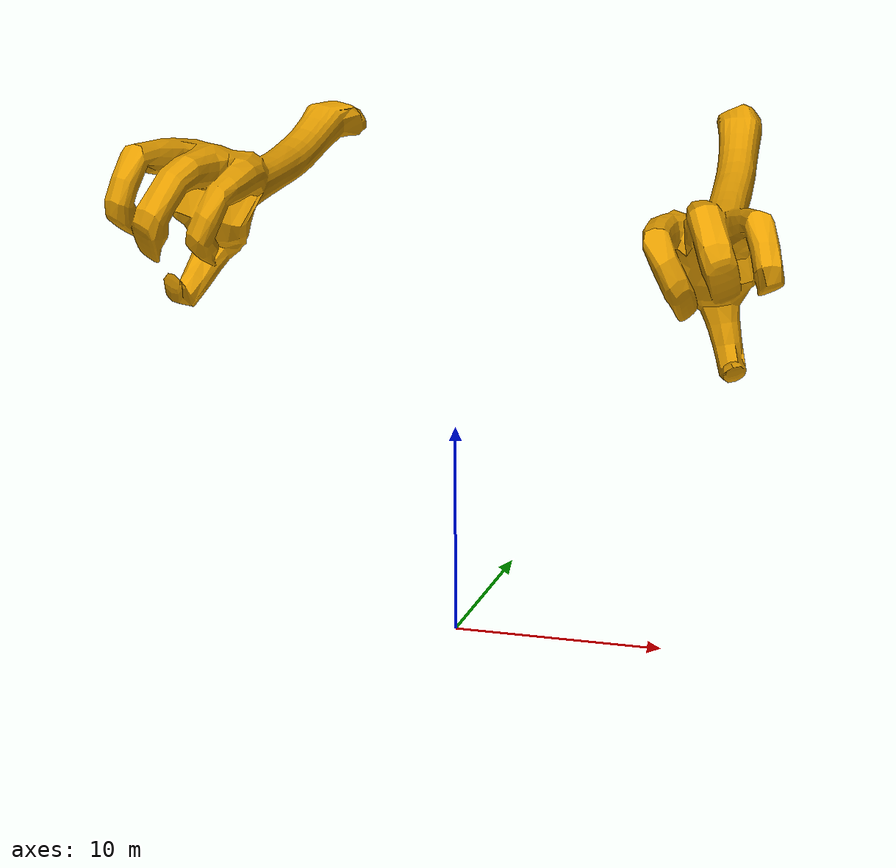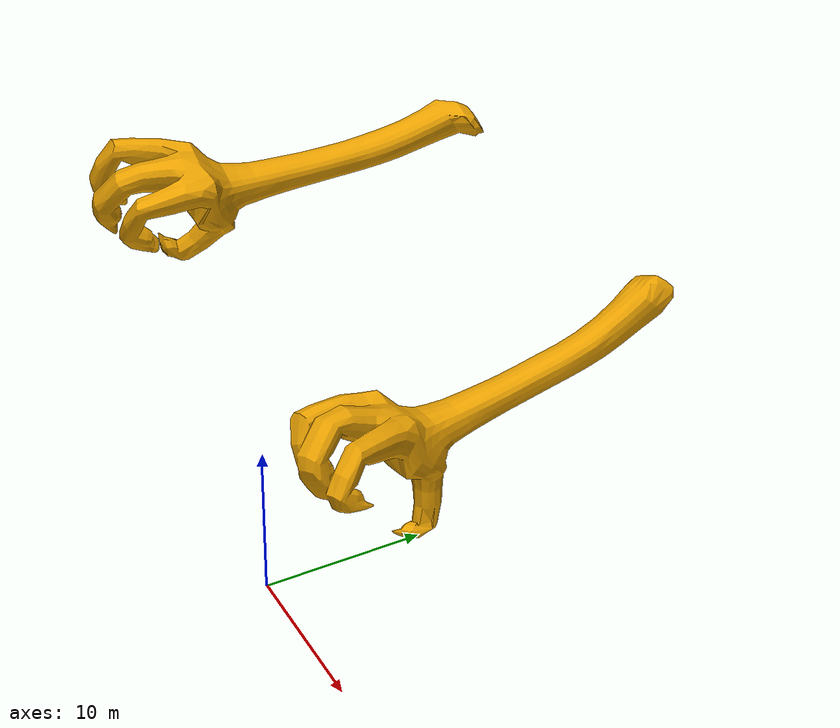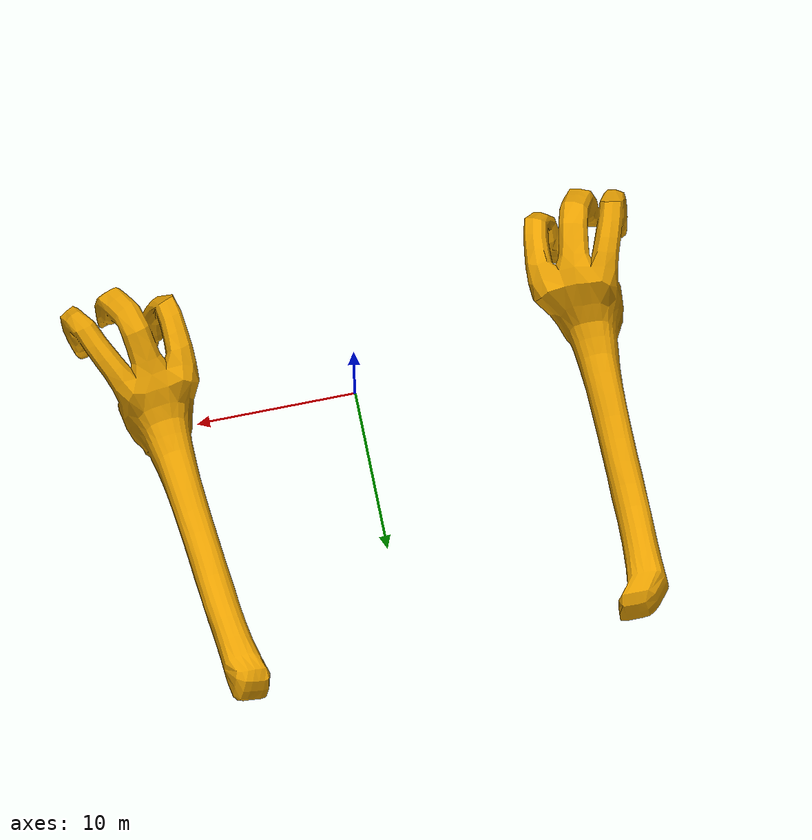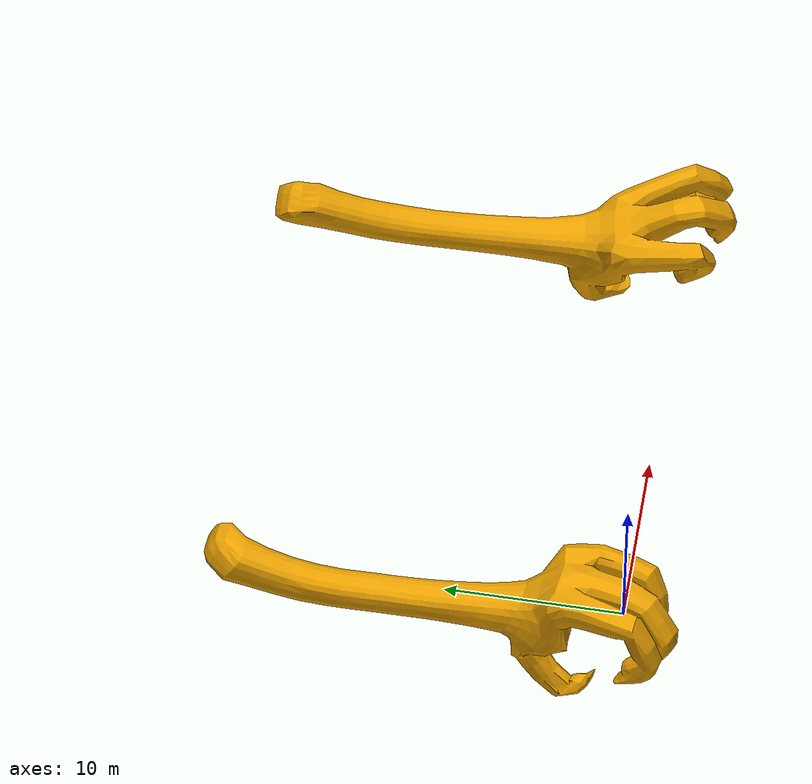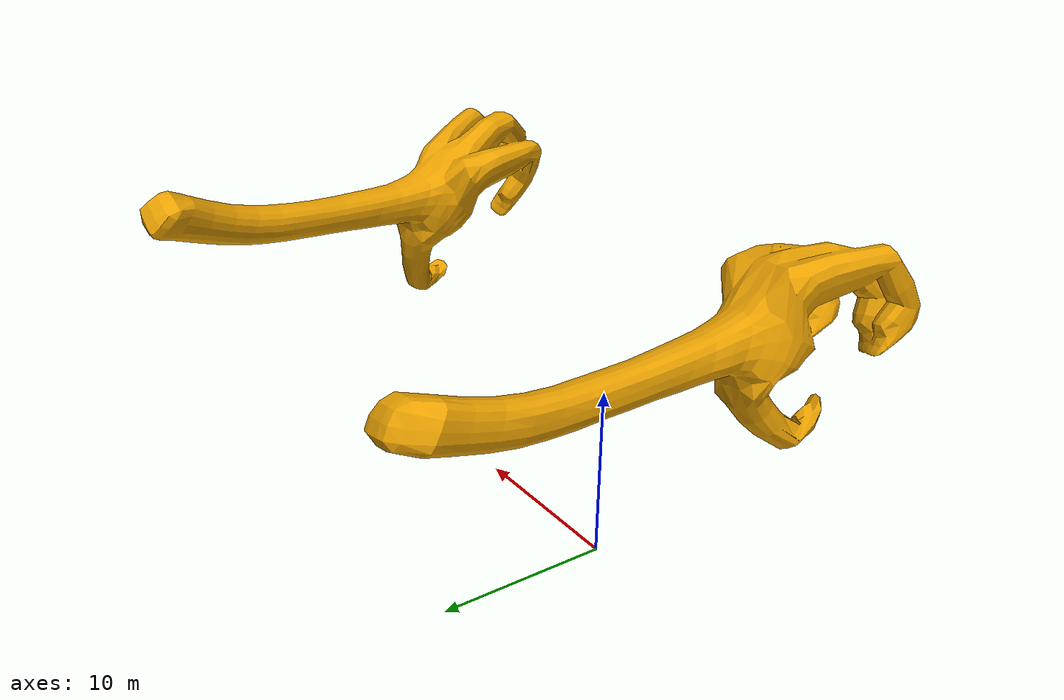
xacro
<robot name="robot">
  <link name="bird_L_PATA_1_link">
    <inertial>
      <origin xyz="0 0 0" rpy="0 0 0" />
      <mass value="1" />
      <inertia ixx="1" ixy="0" ixz="0" iyy="1" iyz="0" izz="1" />
    </inertial>
    <visual>
      <origin xyz="0 0 0" rpy="0 0 0" />
      <geometry>
        <mesh filename="package://rotors_gazebo/meshes/bird_L_PATA_1.dae" />
      </geometry>
    </visual>
    <collision>
      <origin xyz="0 0 0" rpy="0 0 0" />
      <geometry>
        <mesh filename="package://rotors_gazebo/meshes/bird_L_PATA_1.dae" />
      </geometry>
    </collision>
  </link>

  <gazebo> <static>true</static></gazebo>
</robot>
